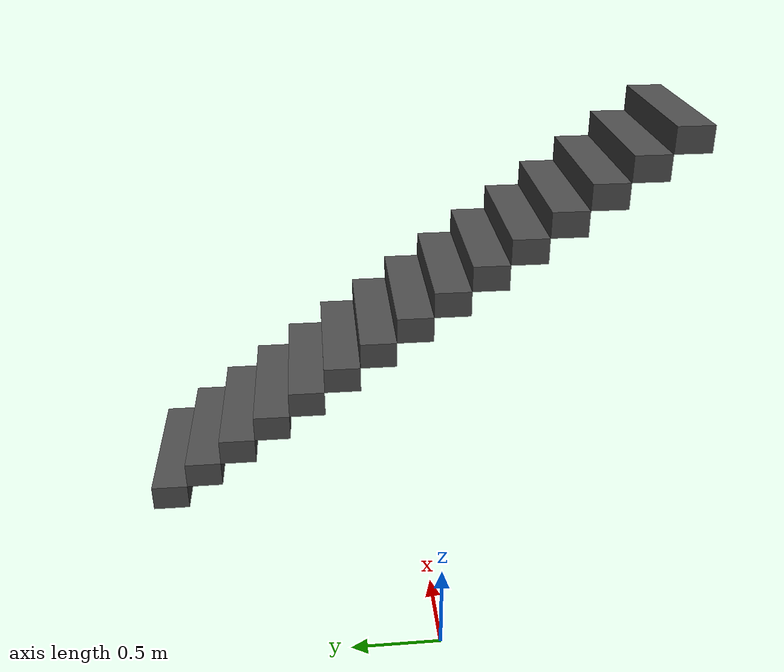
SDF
<?xml version='1.0'?>
<sdf version='1.7'>
  <model name='stairs'>
    <pose>0 0 0 0 0 0</pose>
    <link name='Stairs_0'>
      <visual name='Stairs_0_Visual_0'>
        <pose>1.87044 1.63333 0.083333 0 -0 0</pose>
        <geometry>
          <box>
            <size>1 0.233333 0.166667</size>
          </box>
        </geometry>
        <material>
          <ambient>0.5 0.5 0.5 1.0</ambient>
          <diffuse>0.5 0.5 0.5 1.0</diffuse>
          <specular>0.5 0.5 0.5 1.0</specular>
          <script>
            <name>Gazebo/DarkGrey</name>
            <uri>materials/scripts/gazebo.material</uri>
          </script>
        </material>
        <meta>
          <layer>0</layer>
        </meta>
      </visual>
      <collision name='Stairs_0_Collision_0'>
        <geometry>
          <box>
            <size>1 0.233333 0.166667</size>
          </box>
        </geometry>
        <pose>1.87044 1.63333 0.083333 0 -0 0</pose>
      </collision>
      <visual name='Stairs_0_Visual_1'>
        <pose>1.87044 1.4 0.25 0 -0 0</pose>
        <geometry>
          <box>
            <size>1 0.233333 0.166667</size>
          </box>
        </geometry>
        <material>
          <ambient>0.5 0.5 0.5 1.0</ambient>
          <diffuse>0.5 0.5 0.5 1.0</diffuse>
          <specular>0.5 0.5 0.5 1.0</specular>
          <script>
            <name>Gazebo/DarkGrey</name>
            <uri>materials/scripts/gazebo.material</uri>
          </script>
        </material>
        <meta>
          <layer>0</layer>
        </meta>
      </visual>
      <collision name='Stairs_0_Collision_1'>
        <geometry>
          <box>
            <size>1 0.233333 0.166667</size>
          </box>
        </geometry>
        <pose>1.87044 1.4 0.25 0 -0 0</pose>
      </collision>
      <visual name='Stairs_0_Visual_2'>
        <pose>1.87044 1.16667 0.416667 0 -0 0</pose>
        <geometry>
          <box>
            <size>1 0.233333 0.166667</size>
          </box>
        </geometry>
        <material>
          <ambient>0.5 0.5 0.5 1.0</ambient>
          <diffuse>0.5 0.5 0.5 1.0</diffuse>
          <specular>0.5 0.5 0.5 1.0</specular>
          <script>
            <name>Gazebo/DarkGrey</name>
            <uri>materials/scripts/gazebo.material</uri>
          </script>
        </material>
        <meta>
          <layer>0</layer>
        </meta>
      </visual>
      <collision name='Stairs_0_Collision_2'>
        <geometry>
          <box>
            <size>1 0.233333 0.166667</size>
          </box>
        </geometry>
        <pose>1.87044 1.16667 0.416667 0 -0 0</pose>
      </collision>
      <visual name='Stairs_0_Visual_3'>
        <pose>1.87044 0.933333 0.583333 0 -0 0</pose>
        <geometry>
          <box>
            <size>1 0.233333 0.166667</size>
          </box>
        </geometry>
        <material>
          <ambient>0.5 0.5 0.5 1.0</ambient>
          <diffuse>0.5 0.5 0.5 1.0</diffuse>
          <specular>0.5 0.5 0.5 1.0</specular>
          <script>
            <name>Gazebo/DarkGrey</name>
            <uri>materials/scripts/gazebo.material</uri>
          </script>
        </material>
        <meta>
          <layer>0</layer>
        </meta>
      </visual>
      <collision name='Stairs_0_Collision_3'>
        <geometry>
          <box>
            <size>1 0.233333 0.166667</size>
          </box>
        </geometry>
        <pose>1.87044 0.933333 0.583333 0 -0 0</pose>
      </collision>
      <visual name='Stairs_0_Visual_4'>
        <pose>1.87044 0.7 0.75 0 -0 0</pose>
        <geometry>
          <box>
            <size>1 0.233333 0.166667</size>
          </box>
        </geometry>
        <material>
          <ambient>0.5 0.5 0.5 1.0</ambient>
          <diffuse>0.5 0.5 0.5 1.0</diffuse>
          <specular>0.5 0.5 0.5 1.0</specular>
          <script>
            <name>Gazebo/DarkGrey</name>
            <uri>materials/scripts/gazebo.material</uri>
          </script>
        </material>
        <meta>
          <layer>0</layer>
        </meta>
      </visual>
      <collision name='Stairs_0_Collision_4'>
        <geometry>
          <box>
            <size>1 0.233333 0.166667</size>
          </box>
        </geometry>
        <pose>1.87044 0.7 0.75 0 -0 0</pose>
      </collision>
      <visual name='Stairs_0_Visual_5'>
        <pose>1.87044 0.466667 0.916667 0 -0 0</pose>
        <geometry>
          <box>
            <size>1 0.233333 0.166667</size>
          </box>
        </geometry>
        <material>
          <ambient>0.5 0.5 0.5 1.0</ambient>
          <diffuse>0.5 0.5 0.5 1.0</diffuse>
          <specular>0.5 0.5 0.5 1.0</specular>
          <script>
            <name>Gazebo/DarkGrey</name>
            <uri>materials/scripts/gazebo.material</uri>
          </script>
        </material>
        <meta>
          <layer>0</layer>
        </meta>
      </visual>
      <collision name='Stairs_0_Collision_5'>
        <geometry>
          <box>
            <size>1 0.233333 0.166667</size>
          </box>
        </geometry>
        <pose>1.87044 0.466667 0.916667 0 -0 0</pose>
      </collision>
      <visual name='Stairs_0_Visual_6'>
        <pose>1.87044 0.233333 1.08333 0 -0 0</pose>
        <geometry>
          <box>
            <size>1 0.233333 0.166667</size>
          </box>
        </geometry>
        <material>
          <ambient>0.5 0.5 0.5 1.0</ambient>
          <diffuse>0.5 0.5 0.5 1.0</diffuse>
          <specular>0.5 0.5 0.5 1.0</specular>
          <script>
            <name>Gazebo/DarkGrey</name>
            <uri>materials/scripts/gazebo.material</uri>
          </script>
        </material>
        <meta>
          <layer>0</layer>
        </meta>
      </visual>
      <collision name='Stairs_0_Collision_6'>
        <geometry>
          <box>
            <size>1 0.233333 0.166667</size>
          </box>
        </geometry>
        <pose>1.87044 0.233333 1.08333 0 -0 0</pose>
      </collision>
      <visual name='Stairs_0_Visual_7'>
        <pose>1.87044 -0 1.25 0 -0 0</pose>
        <geometry>
          <box>
            <size>1 0.233333 0.166667</size>
          </box>
        </geometry>
        <material>
          <ambient>0.5 0.5 0.5 1.0</ambient>
          <diffuse>0.5 0.5 0.5 1.0</diffuse>
          <specular>0.5 0.5 0.5 1.0</specular>
          <script>
            <name>Gazebo/DarkGrey</name>
            <uri>materials/scripts/gazebo.material</uri>
          </script>
        </material>
        <meta>
          <layer>0</layer>
        </meta>
      </visual>
      <collision name='Stairs_0_Collision_7'>
        <geometry>
          <box>
            <size>1 0.233333 0.166667</size>
          </box>
        </geometry>
        <pose>1.87044 -0 1.25 0 -0 0</pose>
      </collision>
      <visual name='Stairs_0_Visual_8'>
        <pose>1.87044 -0.233333 1.41667 0 -0 0</pose>
        <geometry>
          <box>
            <size>1 0.233333 0.166667</size>
          </box>
        </geometry>
        <material>
          <ambient>0.5 0.5 0.5 1.0</ambient>
          <diffuse>0.5 0.5 0.5 1.0</diffuse>
          <specular>0.5 0.5 0.5 1.0</specular>
          <script>
            <name>Gazebo/DarkGrey</name>
            <uri>materials/scripts/gazebo.material</uri>
          </script>
        </material>
        <meta>
          <layer>0</layer>
        </meta>
      </visual>
      <collision name='Stairs_0_Collision_8'>
        <geometry>
          <box>
            <size>1 0.233333 0.166667</size>
          </box>
        </geometry>
        <pose>1.87044 -0.233333 1.41667 0 -0 0</pose>
      </collision>
      <visual name='Stairs_0_Visual_9'>
        <pose>1.87044 -0.466667 1.58333 0 -0 0</pose>
        <geometry>
          <box>
            <size>1 0.233333 0.166667</size>
          </box>
        </geometry>
        <material>
          <ambient>0.5 0.5 0.5 1.0</ambient>
          <diffuse>0.5 0.5 0.5 1.0</diffuse>
          <specular>0.5 0.5 0.5 1.0</specular>
          <script>
            <name>Gazebo/DarkGrey</name>
            <uri>materials/scripts/gazebo.material</uri>
          </script>
        </material>
        <meta>
          <layer>0</layer>
        </meta>
      </visual>
      <collision name='Stairs_0_Collision_9'>
        <geometry>
          <box>
            <size>1 0.233333 0.166667</size>
          </box>
        </geometry>
        <pose>1.87044 -0.466667 1.58333 0 -0 0</pose>
      </collision>
      <visual name='Stairs_0_Visual_10'>
        <pose>1.87044 -0.7 1.75 0 -0 0</pose>
        <geometry>
          <box>
            <size>1 0.233333 0.166667</size>
          </box>
        </geometry>
        <material>
          <ambient>0.5 0.5 0.5 1.0</ambient>
          <diffuse>0.5 0.5 0.5 1.0</diffuse>
          <specular>0.5 0.5 0.5 1.0</specular>
          <script>
            <name>Gazebo/DarkGrey</name>
            <uri>materials/scripts/gazebo.material</uri>
          </script>
        </material>
        <meta>
          <layer>0</layer>
        </meta>
      </visual>
      <collision name='Stairs_0_Collision_10'>
        <geometry>
          <box>
            <size>1 0.233333 0.166667</size>
          </box>
        </geometry>
        <pose>1.87044 -0.7 1.75 0 -0 0</pose>
      </collision>
      <visual name='Stairs_0_Visual_11'>
        <pose>1.87044 -0.933333 1.91667 0 -0 0</pose>
        <geometry>
          <box>
            <size>1 0.233333 0.166667</size>
          </box>
        </geometry>
        <material>
          <ambient>0.5 0.5 0.5 1.0</ambient>
          <diffuse>0.5 0.5 0.5 1.0</diffuse>
          <specular>0.5 0.5 0.5 1.0</specular>
          <script>
            <name>Gazebo/DarkGrey</name>
            <uri>materials/scripts/gazebo.material</uri>
          </script>
        </material>
        <meta>
          <layer>0</layer>
        </meta>
      </visual>
      <collision name='Stairs_0_Collision_11'>
        <geometry>
          <box>
            <size>1 0.233333 0.166667</size>
          </box>
        </geometry>
        <pose>1.87044 -0.933333 1.91667 0 -0 0</pose>
      </collision>
      <visual name='Stairs_0_Visual_12'>
        <pose>1.87044 -1.16667 2.08333 0 -0 0</pose>
        <geometry>
          <box>
            <size>1 0.233333 0.166667</size>
          </box>
        </geometry>
        <material>
          <ambient>0.5 0.5 0.5 1.0</ambient>
          <diffuse>0.5 0.5 0.5 1.0</diffuse>
          <specular>0.5 0.5 0.5 1.0</specular>
          <script>
            <name>Gazebo/DarkGrey</name>
            <uri>materials/scripts/gazebo.material</uri>
          </script>
        </material>
        <meta>
          <layer>0</layer>
        </meta>
      </visual>
      <collision name='Stairs_0_Collision_12'>
        <geometry>
          <box>
            <size>1 0.233333 0.166667</size>
          </box>
        </geometry>
        <pose>1.87044 -1.16667 2.08333 0 -0 0</pose>
      </collision>
      <visual name='Stairs_0_Visual_13'>
        <pose>1.87044 -1.4 2.25 0 -0 0</pose>
        <geometry>
          <box>
            <size>1 0.233333 0.166667</size>
          </box>
        </geometry>
        <material>
          <ambient>0.5 0.5 0.5 1.0</ambient>
          <diffuse>0.5 0.5 0.5 1.0</diffuse>
          <specular>0.5 0.5 0.5 1.0</specular>
          <script>
            <name>Gazebo/DarkGrey</name>
            <uri>materials/scripts/gazebo.material</uri>
          </script>
        </material>
        <meta>
          <layer>0</layer>
        </meta>
      </visual>
      <collision name='Stairs_0_Collision_13'>
        <geometry>
          <box>
            <size>1 0.233333 0.166667</size>
          </box>
        </geometry>
        <pose>1.87044 -1.4 2.25 0 -0 0</pose>
      </collision>
      <visual name='Stairs_0_Visual_14'>
        <pose>1.87044 -1.63333 2.41667 0 -0 0</pose>
        <geometry>
          <box>
            <size>1 0.233333 0.166667</size>
          </box>
        </geometry>
        <material>
          <ambient>0.5 0.5 0.5 1.0</ambient>
          <diffuse>0.5 0.5 0.5 1.0</diffuse>
          <specular>0.5 0.5 0.5 1.0</specular>
          <script>
            <name>Gazebo/DarkGrey</name>
            <uri>materials/scripts/gazebo.material</uri>
          </script>
        </material>
        <meta>
          <layer>0</layer>
        </meta>
      </visual>
      <collision name='Stairs_0_Collision_14'>
        <geometry>
          <box>
            <size>1 0.233333 0.166667</size>
          </box>
        </geometry>
        <pose>1.87044 -1.63333 2.41667 0 -0 0</pose>
      </collision>
    </link>
    <static>1</static>
  </model>
</sdf>
